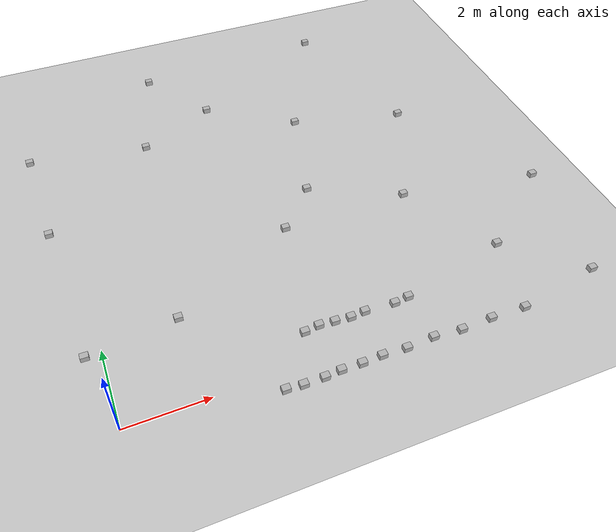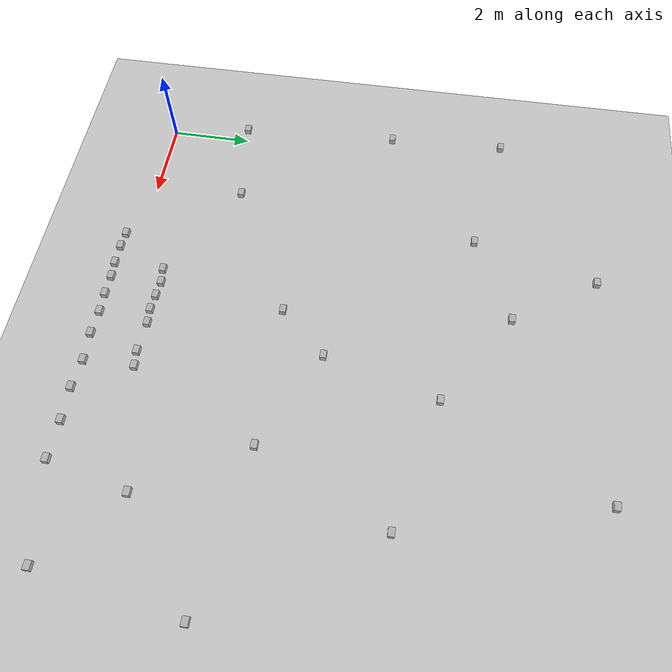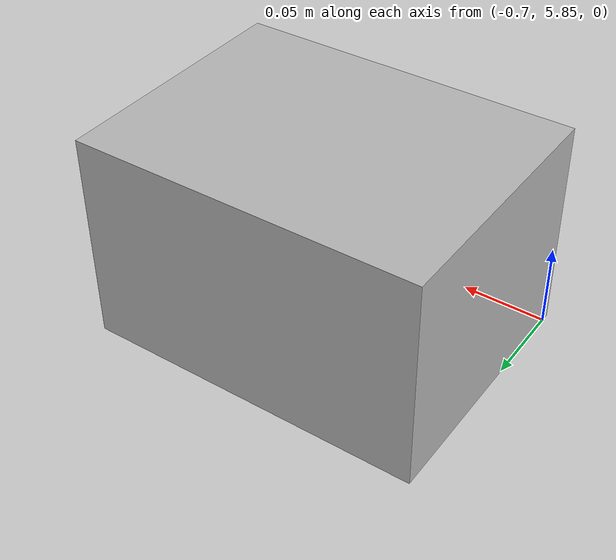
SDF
<?xml version="1.0"?>
<sdf version="1.4">
  <world name="carollo_track_v3">

    <include>
      <uri>model://selfie_description/models/carollo_track_v3</uri>
      <name>track</name>
      <pose>5.5 5.5 0 0 0 0</pose>
    </include>

    <include>
      <uri>model://sun</uri>
      <pose>0 0 10 0 0 0</pose>
      <name>sun</name>
    </include>

    <include>
      <uri>model://selfie_description/models/box</uri>
      <pose>3.5 -0.4 0.05 0 0 0</pose>
      <name>box1</name>
    </include>
    <include>
      <uri>model://selfie_description/models/box</uri>
      <pose>3.9 -0.43 0.05 0 0 0</pose>
      <name>box2</name>
    </include>

    <include>
      <uri>model://selfie_description/models/box</uri>
      <pose>4.4 -0.43 0.05 0 0 0</pose>
      <name>box3</name>
    </include>

    <include>
      <uri>model://selfie_description/models/box</uri>
      <pose>4.8 -0.4 0.05 0 0 0</pose>
      <name>box4</name>
    </include>

    <include>
      <uri>model://selfie_description/models/box</uri>
      <pose>5.3 -0.41 0.05 0 0 0</pose>
      <name>box5</name>
    </include>
    <include>
      <uri>model://selfie_description/models/box</uri>
      <pose>5.8 -0.39 0.05 0 0 0</pose>
      <name>box6</name>
    </include>
    <include>
      <uri>model://selfie_description/models/box</uri>
      <pose>6.4 -0.42 0.05 0 0 0</pose>
      <name>box7</name>
    </include>
    <include>
      <uri>model://selfie_description/models/box</uri>
      <pose>7.1 -0.38 0.05 0 0 0</pose>
      <name>box8</name>
    </include>
    <include>
      <uri>model://selfie_description/models/box</uri>
      <pose>7.8 -0.44 0.05 0 0 0</pose>
      <name>box9</name>
    </include>
    <include>
      <uri>model://selfie_description/models/box</uri>
      <pose>8.6 -0.41 0.05 0 0 0</pose>
      <name>box10</name>
    </include>
    <include>
      <uri>model://selfie_description/models/box</uri>
      <pose>9.5 -0.43 0.05 0 0 0</pose>
      <name>box11</name>
    </include>
    <include>
      <uri>model://selfie_description/models/box</uri>
      <pose>4.42 0.8 0.05 0 0 0</pose>
      <name>box12</name>
    </include>
    <include>
      <uri>model://selfie_description/models/box</uri>
      <pose>4.79 0.85 0.05 0 0 0</pose>
      <name>box13</name>
    </include>
    <include>
      <uri>model://selfie_description/models/box</uri>
      <pose>5.18 0.82 0.05 0 0 0</pose>
      <name>box14</name>
    </include>
    <include>
      <uri>model://selfie_description/models/box</uri>
      <pose>5.57 0.79 0.05 0 0 0</pose>
      <name>box15</name>
    </include>
    <include>
      <uri>model://selfie_description/models/box</uri>
      <pose>5.94 0.82 0.05 0 0 0</pose>
      <name>box16</name>
    </include>
    <include>
      <uri>model://selfie_description/models/box</uri>
      <pose>6.7 0.78 0.05 0 0 0</pose>
      <name>box17</name>
    </include>
    <include>
      <uri>model://selfie_description/models/box</uri>
      <pose>7.08 0.83 0.05 0 0 0</pose>
      <name>box18</name>
    </include>

    <include>
      <uri>model://selfie_description/models/box</uri>
      <pose>11.7 -0.04 0.05 0 0 0</pose>
      <name>box19</name>
    </include>
    <include>
      <uri>model://selfie_description/models/box</uri>
      <pose>12.27 3.33 0.05 0 0 0</pose>
      <name>box20</name>
    </include>
    <include>
      <uri>model://selfie_description/models/box</uri>
      <pose>9.96 1.5 0.05 0 0 0</pose>
      <name>box21</name>
    </include>
    <include>
      <uri>model://selfie_description/models/box</uri>
      <pose>10 7.07 0.05 0 0 0</pose>
      <name>box22</name>
    </include>
    <include>
      <uri>model://selfie_description/models/box</uri>
      <pose>8.8 11.64 0.05 0 0 0</pose>
      <name>box23</name>
    </include>
    <include>
      <uri>model://selfie_description/models/box</uri>
      <pose>8.56 3.93 0.05 0 0 0</pose>
      <name>box24</name>
    </include>
    <include>
      <uri>model://selfie_description/models/box</uri>
      <pose>6.93 7.83 0.05 0 0 0</pose>
      <name>box25</name>
    </include>
    <include>
      <uri>model://selfie_description/models/box</uri>
      <pose>6.2 5.07 0.05 0 0 0</pose>
      <name>box26</name>
    </include>
    <include>
      <uri>model://selfie_description/models/box</uri>
      <pose>5.14 3.93 0.05 0 0 0</pose>
      <name>box27</name>
    </include>
    <include>
      <uri>model://selfie_description/models/box</uri>
      <pose>4.62 9.34 0.05 0 0 0</pose>
      <name>box28</name>
    </include>
    <include>
      <uri>model://selfie_description/models/box</uri>
      <pose>3.3 11.35 0.05 0 0 0</pose>
      <name>box29</name>
    </include>
    <include>
      <uri>model://selfie_description/models/box</uri>
      <pose>2.5 8.33 0.05 0 0 0</pose>
      <name>box30</name>
    </include>
    <include>
      <uri>model://selfie_description/models/box</uri>
      <pose>1.83 2.22 0.05 0 0 0</pose>
      <name>box31</name>
    </include>
    <include>
      <uri>model://selfie_description/models/box</uri>
      <pose>-0.72 8.85 0.05 0 0 0</pose>
      <name>box32</name>
    </include>
    <include>
      <uri>model://selfie_description/models/box</uri>
      <pose>-0.6 5.92 0.05 0 0 0</pose>
      <name>box33</name>
    </include>
    <include>
      <uri>model://selfie_description/models/box</uri>
      <pose>-0.38 1.95 0.05 0 0 0</pose>
      <name>box34</name>
    </include>

  </world>
</sdf>

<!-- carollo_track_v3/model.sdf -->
<sdf version="1.4">
  <model name="basic_track_ground_plane">
    <static>true</static>
    <link name="track">
      <collision name="collision">
        <geometry>
          <plane>
            <normal> 0 0 1</normal>
            <size>16.293 15.963</size>
          </plane>
        </geometry>
        <surface>
          <friction>
            <ode>
              <mu>100</mu>
              <mu2>50</mu2>
            </ode>
          </friction>
         </surface>
      </collision>
      <visual name="visual">
        <cast_shadows>false</cast_shadows>
        <geometry>
          <plane>
            <normal>0 0 1</normal>
            <size>16.293 15.963</size>
          </plane>
        </geometry>
        <material>
          <script>
            <uri>model://selfie_description/models/carollo_track_v3/materials/scripts</uri>
            <uri>model://selfie_description/models/carollo_track_v3/materials/textures</uri>
            <name>basic_track/Image</name>
          </script>
        </material>
      </visual>
    </link>
  </model>
</sdf>

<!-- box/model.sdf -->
<sdf version="1.4">
<model name="box">
  <pose>0 0 0 0 0 0</pose>
  <static>true</static>
    <link name="link">
      <inertial>
        <mass>1.0</mass>
        <inertia> <!-- inertias are tricky to compute -->
          <!-- http://gazebosim.org/tutorials?tut=inertia&cat=build_robot -->
          <ixx>0.083</ixx>       <!-- for a box: ixx = 0.083 * mass * (y*y + z*z) -->
          <ixy>0.0</ixy>         <!-- for a box: ixy = 0 -->
          <ixz>0.0</ixz>         <!-- for a box: ixz = 0 -->
          <iyy>0.083</iyy>       <!-- for a box: iyy = 0.083 * mass * (x*x + z*z) -->
          <iyz>0.0</iyz>         <!-- for a box: iyz = 0 -->
          <izz>0.083</izz>       <!-- for a box: izz = 0.083 * mass * (x*x + y*y) -->
        </inertia>
      </inertial>
      <collision name="collision">
        <geometry>
          <box>
            <size>0.2 0.15 0.15</size>
          </box>
        </geometry>
      </collision>
      <visual name="visual">
        <material>
          <script>Gazebo/White</script>
        </material>
        <geometry>
          <box>
            <size>0.2 0.15 0.15</size>
          </box>
        </geometry>
      </visual>
    </link>
  </model>
</sdf>
